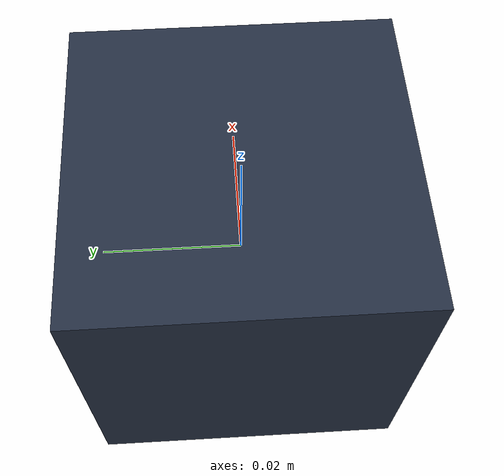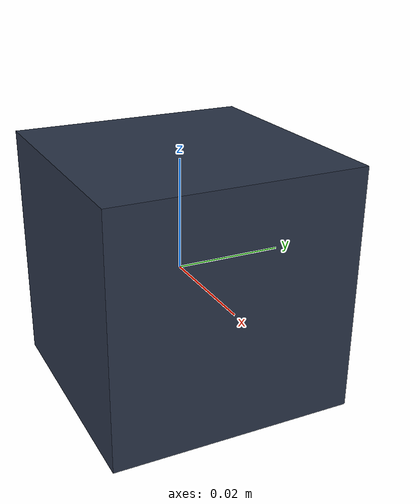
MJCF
<?xml version="1.0" encoding="UTF-8"?>
<!-- Task-local neutral counterweight.  The visual shell is shared by all
     mass variants; only MuJoCo inertial mass differs. -->
<mujoco model="libero_vlabench_seesaw_weight_light">
  <compiler angle="radian"/>
  <worldbody>
    <body>
      <body name="object">
        <geom name="weight_visual" type="box" size="0.022 0.022 0.022"
              group="1" rgba="0.16 0.20 0.28 1" contype="0" conaffinity="0"/>
        <geom name="weight_collision" type="cylinder" size="0.018 0.022"
              mass="0.30" friction="1.5 0.3 0.1" rgba="0 0 0 0"
              contype="1" conaffinity="1"/>
      </body>
      <site name="bottom_site" pos="0 0 -0.022" size="0.005" rgba="0 0 0 0"/>
      <site name="top_site" pos="0 0 0.022" size="0.005" rgba="0 0 0 0"/>
      <site name="horizontal_radius_site" pos="0.022 0 0" size="0.005" rgba="0 0 0 0"/>
    </body>
  </worldbody>
</mujoco>
